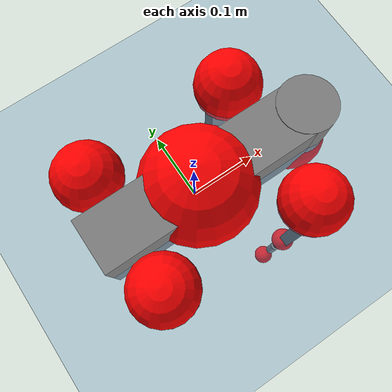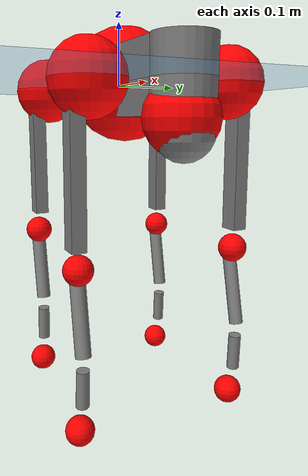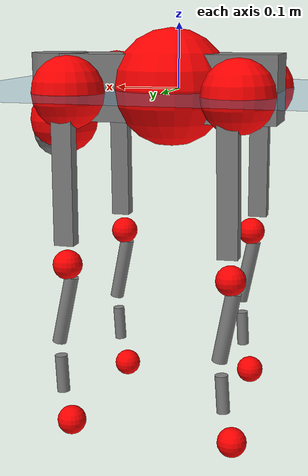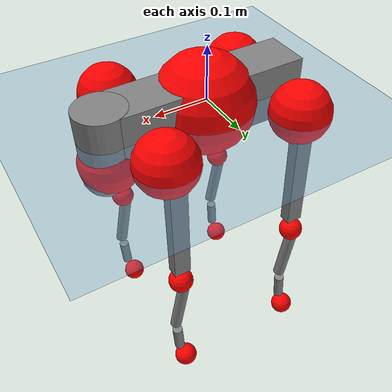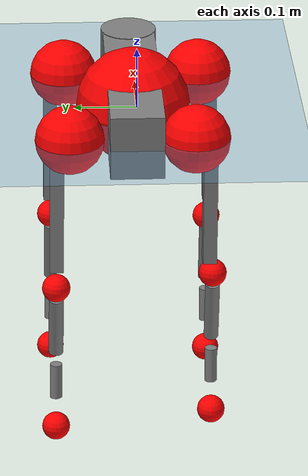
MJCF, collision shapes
<mujoco model="go2">
  <compiler angle="radian" assetdir="assets" balanceinertia="true" inertiafromgeom="false"/>

  <option timestep="0.005" density="1.2" viscosity="2e-05"/>

  <size nkey="1"/>

  <visual>
    <quality shadowsize="8192"/>
    <map shadowclip="0.5"/>
  </visual>

  <default>
    <default class="/">
      <geom contype="0" conaffinity="0" group="1" solref="-1000 -80"/>
      <site size="0.01 0.005 0.005" group="5"/>
      <general forcelimited="true" biastype="affine" gainprm="20" biasprm="0 -20 -0.5"/>
      <default class="go2">
        <joint armature="0.01" damping="0.01" frictionloss="0.2"/>
        <geom condim="1" margin="0.001"/>
        <default class="visual">
          <geom type="mesh" group="2"/>
        </default>
        <default class="collision">
          <geom group="3"/>
          <default class="foot">
            <geom size="0.022 0 0" condim="6" priority="1" friction="0.8 0.02 0.01" solimp="0.015 1 0.022"/>
          </default>
        </default>
        <default class="reward_collision_sphere">
          <geom group="5" rgba="1 0 0 1"/>
        </default>
      </default>
    </default>
  </default>

  <asset>
    <texture type="skybox" colorspace="auto" name="//unnamed_texture_0" builtin="gradient" rgb1="0.95 0.95 0.95" rgb2="0.95 0.95 0.95" width="100" height="600"/>
    <texture type="2d" colorspace="auto" name="texplane" builtin="checker" rgb1="0.345 0.575 0.748" rgb2="0.345 0.575 0.748" markrgb="1 1 1" width="512" height="512"/>
    <material name="MatPlane" class="/" texture="texplane" texuniform="true" texrepeat="2 2" specular="0.9"/>
    <material name="metal" class="/" rgba="0.9 0.95 0.95 1"/>
    <material name="black" class="/" rgba="0 0 0 1"/>
    <material name="white" class="/"/>
    <material name="gray" class="/" rgba="0.671705 0.692426 0.77427 1"/>
    <mesh name="base_0" class="/" file="base_0.obj"/>
    <mesh name="base_1" class="/" file="base_1.obj"/>
    <mesh name="base_2" class="/" file="base_2.obj"/>
    <mesh name="base_3" class="/" file="base_3.obj"/>
    <mesh name="base_4" class="/" file="base_4.obj"/>
    <mesh name="hip_0" class="/" file="hip_0.obj"/>
    <mesh name="hip_1" class="/" file="hip_1.obj"/>
    <mesh name="thigh_0" class="/" file="thigh_0.obj"/>
    <mesh name="thigh_1" class="/" file="thigh_1.obj"/>
    <mesh name="thigh_mirror_0" class="/" file="thigh_mirror_0.obj"/>
    <mesh name="thigh_mirror_1" class="/" file="thigh_mirror_1.obj"/>
    <mesh name="calf_0" class="/" file="calf_0.obj"/>
    <mesh name="calf_1" class="/" file="calf_1.obj"/>
    <mesh name="calf_mirror_0" class="/" file="calf_mirror_0.obj"/>
    <mesh name="calf_mirror_1" class="/" file="calf_mirror_1.obj"/>
    <mesh name="foot" class="/" file="foot.obj"/>
  </asset>

  <worldbody>
    <geom name="floor" class="/" size="100 100 0.125" type="plane" group="0" material="MatPlane"/>
    <light name="toplight_shadow" class="/" pos="0 0 5" dir="0.0990148 0.0990148 -0.990148" type="directional" ambient="0.04 0.04 0.04" diffuse="0.55 0.55 0.55" specular="0.12 0.12 0.12"/>
    <light name="toplight_fill" class="/" pos="0 0 5" dir="0.0990148 0.0990148 -0.990148" type="directional" castshadow="false" ambient="0.04 0.04 0.04" diffuse="0.3 0.3 0.3" specular="0.08 0.08 0.08"/>
    <body name="trunk" childclass="go2" pos="0.01003 0.00590004 0.0021389" quat="0.999993 0.000639632 0.00325506 0.00167287">
      <inertial pos="0.0243035 -0.00103467 -0.00756838" quat="-0.00279925 0.713779 -0.0116457 0.700268" mass="4.97636" diaginertia="0.0116824 0.0539509 0.0507275"/>
      <joint name="//unnamed_joint_0" type="free" armature="0" damping="0" frictionloss="0"/>
      <geom name="//unnamed_geom_1" class="visual" material="black" mesh="base_0"/>
      <geom name="//unnamed_geom_2" class="visual" material="black" mesh="base_1"/>
      <geom name="//unnamed_geom_3" class="visual" material="black" mesh="base_2"/>
      <geom name="//unnamed_geom_4" class="visual" material="white" mesh="base_3"/>
      <geom name="//unnamed_geom_5" class="visual" material="gray" mesh="base_4"/>
      <geom name="trunk_1" class="collision" size="0.170576 0.0423947 0.0516898" type="box"/>
      <geom name="trunk_2" class="collision" size="0.0453419 0.0408077" pos="0.183466 0 0.0118886" type="cylinder"/>
      <geom name="trunk_3" class="collision" size="0.0426214" pos="0.188616 0 -0.0713317"/>
      <geom name="//unnamed_geom_9" class="reward_collision_sphere" size="0.0906838"/>
      <geom name="//unnamed_geom_10" class="reward_collision_sphere" size="0.0544103" pos="0.180247 0 -0.0534988"/>
      <site name="imu" pos="-0.00772836 -0.00899688 0.0537287" size="0.00906838"/>
      <camera name="track" pos="0 -1.77582 0" quat="0.707107 0.707107 0 0" mode="trackcom"/>
      <camera name="ego_camera" pos="0.200847 0 0.0534988" quat="-0.5 -0.5 0.5 0.5"/>
      <body name="FL_hip" pos="0.129388 0.0463348 -0.00240092" quat="0.999987 0.00488063 -0.00105152 0.00037707">
        <inertial pos="0.00747569 0.00552202 0.0037448" quat="0.4918 0.496726 0.506763 0.504566" mass="0.44652" diaginertia="8.66673e-05 0.000329012 0.000969331"/>
        <joint name="FL_hip_joint" pos="0 0 0" axis="1 0.000134465 -3.44295e-05" stiffness="0.0168563" range="-1.07804 1.21184" armature="0.00602154" damping="0.0348085" frictionloss="0.158622"/>
        <geom name="//unnamed_geom_11" class="visual" material="metal" mesh="hip_0"/>
        <geom name="//unnamed_geom_12" class="visual" material="gray" mesh="hip_1"/>
        <geom name="//unnamed_geom_13" class="collision" size="0.0417145 0.0181368" pos="0 0.0710329 0" quat="0.707107 0.707107 0 0" type="cylinder"/>
        <geom name="//unnamed_geom_14" class="reward_collision_sphere" size="0.0544103" pos="0 0.0621538 0"/>
        <body name="FL_thigh" pos="-0.000807011 0.0844917 -0.00193633" quat="0.999999 0.000463541 -0.000807735 0.000502678">
          <inertial pos="-0.0123786 -0.0184098 -0.0476507" quat="0.830218 0.0892187 -0.02667 0.549606" mass="0.875724" diaginertia="0.000654662 0.00324423 0.00217086"/>
          <joint name="FL_thigh_joint" pos="0 0 0" axis="0.018468 0.999806 0.00680245" range="-1.4204 3.35467" armature="0.00602637" damping="0.0572017" frictionloss="0.150465"/>
          <geom name="//unnamed_geom_15" class="visual" material="metal" mesh="thigh_0"/>
          <geom name="//unnamed_geom_16" class="visual" material="gray" mesh="thigh_1"/>
          <geom name="//unnamed_geom_17" class="collision" size="0.0965782 0.0111088 0.0154162" pos="0 0 -0.126614" quat="0.707107 0 0.707107 0" type="box"/>
          <body name="FL_calf" pos="-0.000989488 -0.00100661 -0.254946" quat="0.999997 0.00177434 -0.000101931 -0.00192399">
            <inertial pos="-0.000481893 -0.00427612 -0.161611" quat="0.708539 0.0306055 0.0267033 0.704501" mass="0.177341" diaginertia="0.000166689 0.00076826 0.000134126"/>
            <joint name="FL_calf_joint" pos="0 0 0" axis="-0.00251878 0.999936 0.011054" stiffness="0.00218657" range="-2.75795 -0.680258" armature="0.0110857" damping="0.00353589" frictionloss="0.17236"/>
            <geom name="//unnamed_geom_18" class="visual" material="gray" mesh="calf_0"/>
            <geom name="//unnamed_geom_19" class="visual" material="black" mesh="calf_1"/>
            <geom name="FL_calf0" class="collision" size="0.0108821 0.0544103" pos="0.00514992 0 -0.0713317" quat="0.994493 0 -0.104807 0" type="cylinder"/>
            <geom name="//unnamed_geom_21" class="collision" size="0.00997522 0.0294722" pos="0.0128748 0 -0.175952" quat="0.999688 0 0.0249974 0" type="cylinder"/>
            <geom name="//unnamed_geom_22" class="visual" pos="0 0 -0.253228" quat="1 0 0 0" material="black" mesh="foot"/>
            <geom name="FL_foot" class="foot" size="0.0201702" pos="-0.00128748 0 -0.253228"/>
            <geom name="//unnamed_geom_24" class="reward_collision_sphere" size="0.0226709"/>
            <geom name="//unnamed_geom_25" class="reward_collision_sphere" size="0.0226709" pos="-0.00128748 0 -0.253228"/>
            <site name="FL_foot" class="foot" pos="-0.00128748 0 -0.253228" size="0.00906838"/>
          </body>
        </body>
      </body>
      <body name="FR_hip" pos="0.12712 -0.0494121 -0.00280062" quat="0.999999 -0.000404445 0.00105527 -0.000936499">
        <inertial pos="-0.0106281 -0.00230291 -0.000704066" quat="0.49432 0.500678 0.50275 0.502207" mass="0.398087" diaginertia="8.96893e-05 0.000304829 0.00112348"/>
        <joint name="FR_hip_joint" pos="0 0 0" axis="0.999995 0.00306019 0.00111809" stiffness="0.0497967" range="-1.13276 1.06139" armature="0.0137645" damping="0.000790782" frictionloss="0.0886058"/>
        <geom name="//unnamed_geom_26" class="visual" pos="0 -2.62177e-09 -1.12453e-07" quat="4.63268e-05 1 0 0" material="metal" mesh="hip_0"/>
        <geom name="//unnamed_geom_27" class="visual" pos="0 -4.2502e-09 2.78139e-07" quat="4.63268e-05 1 0 0" material="gray" mesh="hip_1"/>
        <geom name="//unnamed_geom_28" class="collision" size="0.0417145 0.0181368" pos="0 -0.0710329 0" quat="0.707107 0.707107 0 0" type="cylinder"/>
        <geom name="//unnamed_geom_29" class="reward_collision_sphere" size="0.0544103" pos="0 -0.0621538 0"/>
        <body name="FR_thigh" pos="0.00156733 -0.0824874 -0.0088439" quat="0.999988 -0.0035299 -0.00125265 -0.00300923">
          <inertial pos="0.00382413 0.030555 -0.038034" quat="0.550302 -0.0239724 0.0874711 0.830025" mass="0.999875" diaginertia="0.000683355 0.00340677 0.00232913"/>
          <joint name="FR_thigh_joint" pos="0 0 0" axis="-0.00103053 -0.999997 0.0022566" range="-3.47024 1.60866" armature="0.00928336" damping="0" frictionloss="0.158098"/>
          <geom name="//unnamed_geom_30" class="visual" material="metal" mesh="thigh_mirror_0"/>
          <geom name="//unnamed_geom_31" class="visual" material="gray" mesh="thigh_mirror_1"/>
          <geom name="//unnamed_geom_32" class="collision" size="0.0965782 0.0111088 0.0154162" pos="0 0 -0.126614" quat="0.707107 0 0.707107 0" type="box"/>
          <body name="FR_calf" pos="-0.00533205 0.00476011 -0.253256" quat="1 0.000451875 9.00726e-05 -8.42445e-05">
            <inertial pos="0.000305972 0.000896505 -0.167505" quat="0.706747 -0.00381972 5.82416e-05 0.707456" mass="0.161588" diaginertia="0.000133966 0.000787273 0.000116683"/>
            <joint name="FR_calf_joint" pos="0 0 0" axis="0.0373826 -0.999301 0.000416882" stiffness="0.0210768" range="0.845447 2.70005" armature="0.00982215" damping="0" frictionloss="0.17756"/>
            <geom name="//unnamed_geom_33" class="visual" material="gray" mesh="calf_mirror_0"/>
            <geom name="//unnamed_geom_34" class="visual" material="black" mesh="calf_mirror_1"/>
            <geom name="FR_calf0" class="collision" size="0.0117889 0.0544103" pos="0.00643741 0 -0.0713317" quat="0.995004 0 -0.0998334 0" type="cylinder"/>
            <geom name="//unnamed_geom_36" class="collision" size="0.00997522 0.0294722" pos="0.0128748 0 -0.175952" quat="0.999688 0 0.0249974 0" type="cylinder"/>
            <geom name="//unnamed_geom_37" class="visual" pos="0 0 -0.253228" quat="1 0 0 0" material="black" mesh="foot"/>
            <geom name="FR_foot" class="foot" size="0.0174495" pos="-0.00128748 0 -0.253228"/>
            <geom name="//unnamed_geom_39" class="reward_collision_sphere" size="0.0226709"/>
            <geom name="//unnamed_geom_40" class="reward_collision_sphere" size="0.0226709" pos="-0.00128748 0 -0.253228"/>
            <site name="FR_foot" class="foot" pos="-0.00128748 0 -0.253228" size="0.00906838"/>
          </body>
        </body>
      </body>
      <body name="RL_hip" pos="-0.125332 0.0419294 -0.00426639" quat="0.999982 0.00214249 0.0049302 -0.00248667">
        <inertial pos="-0.0065216 0.00192536 0.00125467" quat="0.506589 0.498183 0.496624 0.498544" mass="0.516202" diaginertia="9.9435e-05 0.000309431 0.00117201"/>
        <joint name="RL_hip_joint" pos="0 0 0" axis="-0.999992 0.00386841 0.00130474" range="-1.05823 1.06607" armature="0.00877074" damping="0" frictionloss="0.162777"/>
        <geom name="//unnamed_geom_41" class="visual" pos="4.74888e-09 0 9.30889e-07" quat="4.63268e-05 0 1 0" material="metal" mesh="hip_0"/>
        <geom name="//unnamed_geom_42" class="visual" pos="7.6985e-09 0 8.25566e-07" quat="4.63268e-05 0 1 0" material="gray" mesh="hip_1"/>
        <geom name="//unnamed_geom_43" class="collision" size="0.0417145 0.0181368" pos="0 0.0710329 0" quat="0.707107 0.707107 0 0" type="cylinder"/>
        <geom name="//unnamed_geom_44" class="reward_collision_sphere" size="0.0544103" pos="0 0.0621538 0"/>
        <body name="RL_thigh" pos="0.00938926 0.0822041 -0.00621792" quat="0.999989 0.00402796 0.00257596 0.000342629">
          <inertial pos="-0.00432778 -0.0201791 -0.0394543" quat="0.807756 0.0848634 -0.00285974 0.58337" mass="0.944428" diaginertia="0.000651686 0.00351145 0.00205232"/>
          <joint name="RL_thigh_joint" pos="0 0 0" axis="-0.00457693 0.999919 0.0118557" stiffness="0.0124817" range="-0.539362 4.47339" armature="0.0112779" damping="0.0574351" frictionloss="0.196283"/>
          <geom name="//unnamed_geom_45" class="visual" material="metal" mesh="thigh_0"/>
          <geom name="//unnamed_geom_46" class="visual" material="gray" mesh="thigh_1"/>
          <geom name="//unnamed_geom_47" class="collision" size="0.0965782 0.0111088 0.0154162" pos="0 0 -0.126614" quat="0.707107 0 0.707107 0" type="box"/>
          <body name="RL_calf" pos="-0.00295827 0.000671788 -0.256417" quat="1 0.000103653 0.000398271 0.000257056">
            <inertial pos="0.00437634 0.000322064 -0.172433" quat="0.710807 0.000692543 -0.00480621 0.70337" mass="0.178996" diaginertia="0.000165297 0.000838204 0.000125376"/>
            <joint name="RL_calf_joint" pos="0 0 0" axis="-0.0044486 0.999864 -0.0159091" range="-2.71375 -0.832452" armature="0.0106771" damping="0.0501981" frictionloss="0.165583"/>
            <geom name="//unnamed_geom_48" class="visual" material="gray" mesh="calf_0"/>
            <geom name="//unnamed_geom_49" class="visual" material="black" mesh="calf_1"/>
            <geom name="RL_calf0" class="collision" size="0.0117889 0.0544103" pos="0.00643741 0 -0.0713317" quat="0.995004 0 -0.0998334 0" type="cylinder"/>
            <geom name="//unnamed_geom_51" class="collision" size="0.00997522 0.0294722" pos="0.0128748 0 -0.175952" quat="0.999688 0 0.0249974 0" type="cylinder"/>
            <geom name="//unnamed_geom_52" class="visual" pos="0 0 -0.253228" quat="1 0 0 0" material="black" mesh="foot"/>
            <geom name="RL_foot" class="foot" size="0.0157646" pos="-0.00128748 0 -0.253228"/>
            <geom name="//unnamed_geom_54" class="reward_collision_sphere" size="0.0226709"/>
            <geom name="//unnamed_geom_55" class="reward_collision_sphere" size="0.0226709" pos="-0.00128748 0 -0.253228"/>
            <site name="RL_foot" class="foot" pos="-0.00128748 0 -0.253228" size="0.00906838"/>
          </body>
        </body>
      </body>
      <body name="RR_hip" pos="-0.1226 -0.031557 -0.00703491" quat="0.999996 -0.0025864 -0.000830481 -0.00123719">
        <inertial pos="0.00324439 -0.0089387 -0.000572912" quat="0.47874 0.483569 0.53566 0.500038" mass="0.49163" diaginertia="9.0434e-05 0.000301825 0.00114748"/>
        <joint name="RR_hip_joint" pos="0 0 0" axis="-0.999994 -0.0024691 -0.00225525" range="-1.03279 1.03783" armature="0.00413695" damping="0" frictionloss="0.256845"/>
        <geom name="//unnamed_geom_56" class="visual" pos="-4.74042e-09 -2.62177e-09 1.04334e-06" quat="2.14617e-09 4.63268e-05 4.63268e-05 -1" material="metal" mesh="hip_0"/>
        <geom name="//unnamed_geom_57" class="visual" pos="-7.71941e-09 -4.2502e-09 5.47427e-07" quat="2.14617e-09 4.63268e-05 4.63268e-05 -1" material="gray" mesh="hip_1"/>
        <geom name="//unnamed_geom_58" class="collision" size="0.0417145 0.0181368" pos="0 -0.0710329 0" quat="0.707107 0.707107 0 0" type="cylinder"/>
        <geom name="//unnamed_geom_59" class="reward_collision_sphere" size="0.0544103" pos="0 -0.0621538 0"/>
        <body name="RR_thigh" pos="0.00337517 -0.0849631 0.00774434" quat="0.999999 0.0010927 0.000929688 0.000544299">
          <inertial pos="-0.00274489 0.0231041 -0.0372121" quat="0.554088 -0.0218487 0.0811639 0.828204" mass="0.915255" diaginertia="0.000694031 0.00325371 0.00237735"/>
          <joint name="RR_thigh_joint" pos="0 0 0" axis="-0.0437952 -0.998691 -0.0264253" stiffness="0.0277151" range="-4.35688 0.428793" armature="0.00736359" damping="0.00855748" frictionloss="0.186573"/>
          <geom name="//unnamed_geom_60" class="visual" material="metal" mesh="thigh_mirror_0"/>
          <geom name="//unnamed_geom_61" class="visual" material="gray" mesh="thigh_mirror_1"/>
          <geom name="//unnamed_geom_62" class="collision" size="0.0965782 0.0111088 0.0154162" pos="0 0 -0.126614" quat="0.707107 0 0.707107 0" type="box"/>
          <body name="RR_calf" pos="0.0121368 -0.0063188 -0.253007" quat="1 2.486e-05 0.000120492 0.000218857">
            <inertial pos="-0.00729715 -0.000303523 -0.17219" quat="0.702572 0.00608408 0.00202968 0.711584" mass="0.175604" diaginertia="0.000176718 0.000983847 0.000132852"/>
            <joint name="RR_calf_joint" pos="0 0 0" axis="-0.000467567 -1 -0.000577467" range="0.713141 2.49002" armature="0.0125688" damping="0.0128924" frictionloss="0.174605"/>
            <geom name="//unnamed_geom_63" class="visual" material="gray" mesh="calf_mirror_0"/>
            <geom name="//unnamed_geom_64" class="visual" material="black" mesh="calf_mirror_1"/>
            <geom name="RR_calf0" class="collision" size="0.0117889 0.0544103" pos="0.00643741 0 -0.0713317" quat="0.995004 0 -0.0998334 0" type="cylinder"/>
            <geom name="//unnamed_geom_66" class="collision" size="0.00997522 0.0294722" pos="0.0128748 0 -0.175952" quat="0.999688 0 0.0249974 0" type="cylinder"/>
            <geom name="//unnamed_geom_67" class="visual" pos="0 0 -0.253228" quat="1 0 0 0" material="black" mesh="foot"/>
            <geom name="RR_foot" class="foot" size="0.0185517" pos="-0.00128748 0 -0.253228"/>
            <geom name="//unnamed_geom_69" class="reward_collision_sphere" size="0.0226709"/>
            <geom name="//unnamed_geom_70" class="reward_collision_sphere" size="0.0226709" pos="-0.00128748 0 -0.253228"/>
            <site name="RR_foot" class="foot" pos="-0.00128748 0 -0.253228" size="0.00906838"/>
          </body>
        </body>
      </body>
    </body>
  </worldbody>

  <contact>
    <pair class="/" geom1="floor" geom2="FL_foot" name="//unnamed_contact_0"/>
    <pair class="/" geom1="floor" geom2="FR_foot" name="//unnamed_contact_1"/>
    <pair class="/" geom1="floor" geom2="RL_foot" name="//unnamed_contact_2"/>
    <pair class="/" geom1="floor" geom2="RR_foot" name="//unnamed_contact_3"/>
  </contact>

  <actuator>
    <general name="FL_hip" class="/" joint="FL_hip_joint" forcerange="-20.0009 20.0009" gainprm="18.3058" biasprm="0 -18.3058 -0.448584"/>
    <general name="FL_thigh" class="/" joint="FL_thigh_joint" forcerange="-24.4953 24.4953" gainprm="18.3058" biasprm="0 -18.3058 -0.448584"/>
    <general name="FL_calf" class="/" joint="FL_calf_joint" forcerange="-40.9494 40.9494" gainprm="18.3058" biasprm="0 -18.3058 -0.448584"/>
    <general name="FR_hip" class="/" joint="FR_hip_joint" forcerange="-12.5791 12.5791" gainprm="18.3058" biasprm="0 -18.3058 -0.448584"/>
    <general name="FR_thigh" class="/" joint="FR_thigh_joint" forcerange="-21.5138 21.5138" gainprm="18.3058" biasprm="0 -18.3058 -0.448584"/>
    <general name="FR_calf" class="/" joint="FR_calf_joint" forcerange="-51.2636 51.2636" gainprm="18.3058" biasprm="0 -18.3058 -0.448584"/>
    <general name="RL_hip" class="/" joint="RL_hip_joint" forcerange="-20.5193 20.5193" gainprm="18.3058" biasprm="0 -18.3058 -0.448584"/>
    <general name="RL_thigh" class="/" joint="RL_thigh_joint" forcerange="-20.6623 20.6623" gainprm="18.3058" biasprm="0 -18.3058 -0.448584"/>
    <general name="RL_calf" class="/" joint="RL_calf_joint" forcerange="-44.9207 44.9207" gainprm="18.3058" biasprm="0 -18.3058 -0.448584"/>
    <general name="RR_hip" class="/" joint="RR_hip_joint" forcerange="-22.5157 22.5157" gainprm="18.3058" biasprm="0 -18.3058 -0.448584"/>
    <general name="RR_thigh" class="/" joint="RR_thigh_joint" forcerange="-22.4828 22.4828" gainprm="18.3058" biasprm="0 -18.3058 -0.448584"/>
    <general name="RR_calf" class="/" joint="RR_calf_joint" forcerange="-27.1766 27.1766" gainprm="18.3058" biasprm="0 -18.3058 -0.448584"/>
  </actuator>

  <sensor>
    <gyro site="imu" name="imu_angular_velocity"/>
    <velocimeter site="imu" name="imu_linear_velocity"/>
    <framelinvel objtype="site" objname="FL_foot" name="FL_foot_global_linear_velocity"/>
    <framelinvel objtype="site" objname="FR_foot" name="FR_foot_global_linear_velocity"/>
    <framelinvel objtype="site" objname="RL_foot" name="RL_foot_global_linear_velocity"/>
    <framelinvel objtype="site" objname="RR_foot" name="RR_foot_global_linear_velocity"/>
  </sensor>

  <keyframe>
    <key name="home" qpos="0 0 0.325 1 0 0 0 0.1 0.8 -1.5 -0.1 -0.8 1.5 -0.1 0.8 -1.5 0.1 -0.8 1.5"/>
  </keyframe>
</mujoco>
